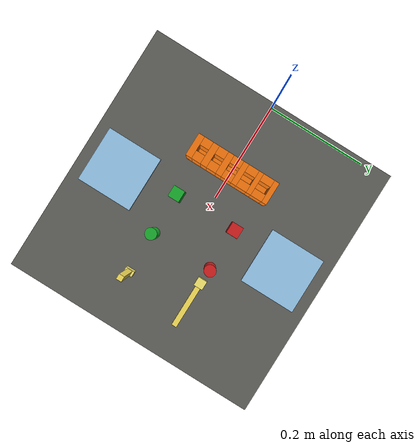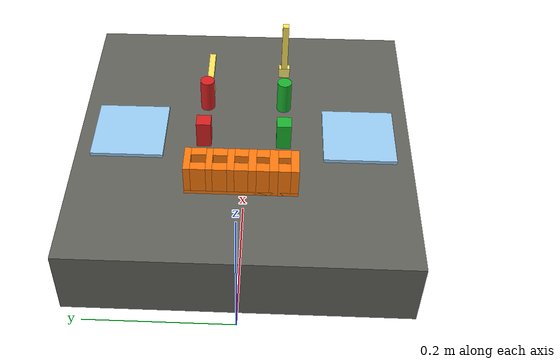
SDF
<sdf version="1.8">
 <world name="ur_hande_dual_arm_tabletop">
  <model name="Sync_TaskPlatform">
   <static>true</static>
   <pose>0.25 0 0.05 0 0 0</pose>
   <link name="platform_link">
    <collision name="collision">
     <geometry><box><size>0.462 0.462 0.1</size></box></geometry>
     <surface>
      <friction><ode><mu>1</mu><mu2>1</mu2></ode></friction>
      <contact><ode><max_vel>0.2</max_vel><min_depth>0.001</min_depth></ode></contact>
     </surface>
    </collision>
    <visual name="visual">
     <geometry><box><size>0.462 0.462 0.1</size></box></geometry>
     <material>
      <ambient>0.38 0.38 0.36 1</ambient>
      <diffuse>0.38 0.38 0.36 1</diffuse>
      <specular>0.1 0.1 0.1 1</specular>
     </material>
    </visual>
   </link>
  </model>
  <model name="Sync_RedCube">
   <static>false</static>
   <pose>0.235 0.055 0.12 0 0 0</pose>
   <link name="body_link">
    <collision name="collision">
     <geometry><box><size>0.02 0.02 0.04</size></box></geometry>
     <surface>
      <friction><ode><mu>0.9</mu><mu2>0.9</mu2></ode></friction>
      <contact><ode><max_vel>0.2</max_vel><min_depth>0.001</min_depth></ode></contact>
     </surface>
    </collision>
    <visual name="visual">
     <geometry><box><size>0.02 0.02 0.04</size></box></geometry>
     <material>
      <ambient>0.85 0.12 0.12 1</ambient>
      <diffuse>0.85 0.12 0.12 1</diffuse>
      <specular>0.1 0.1 0.1 1</specular>
     </material>
    </visual>
    <inertial>
     <mass>0.03</mass>
     <inertia><ixx>5e-06</ixx><ixy>0</ixy><ixz>0</ixz><iyy>5e-06</iyy><iyz>0</iyz><izz>2e-06</izz></inertia>
    </inertial>
   </link>
  </model>
  <model name="Sync_GreenCube">
   <static>false</static>
   <pose>0.235 -0.055 0.12 0 0 0</pose>
   <link name="body_link">
    <collision name="collision">
     <geometry><box><size>0.02 0.02 0.04</size></box></geometry>
     <surface>
      <friction><ode><mu>0.9</mu><mu2>0.9</mu2></ode></friction>
      <contact><ode><max_vel>0.2</max_vel><min_depth>0.001</min_depth></ode></contact>
     </surface>
    </collision>
    <visual name="visual">
     <geometry><box><size>0.02 0.02 0.04</size></box></geometry>
     <material>
      <ambient>0.1 0.7 0.18 1</ambient>
      <diffuse>0.1 0.7 0.18 1</diffuse>
      <specular>0.1 0.1 0.1 1</specular>
     </material>
    </visual>
    <inertial>
     <mass>0.03</mass>
     <inertia><ixx>5e-06</ixx><ixy>0</ixy><ixz>0</ixz><iyy>5e-06</iyy><iyz>0</iyz><izz>2e-06</izz></inertia>
    </inertial>
   </link>
  </model>
  <model name="Sync_RedCylinder">
   <static>false</static>
   <pose>0.31 0.055 0.124 0 0 0</pose>
   <link name="body_link">
    <collision name="collision">
     <geometry><cylinder><radius>0.01</radius><length>0.048</length></cylinder></geometry>
     <surface>
      <friction><ode><mu>0.9</mu><mu2>0.9</mu2></ode></friction>
      <contact><ode><max_vel>0.2</max_vel><min_depth>0.001</min_depth></ode></contact>
     </surface>
    </collision>
    <visual name="visual">
     <geometry><cylinder><radius>0.01</radius><length>0.048</length></cylinder></geometry>
     <material>
      <ambient>0.85 0.12 0.12 1</ambient>
      <diffuse>0.85 0.12 0.12 1</diffuse>
      <specular>0.1 0.1 0.1 1</specular>
     </material>
    </visual>
    <inertial>
     <mass>0.03</mass>
     <inertia>
      <ixx>6.51e-06</ixx>
      <ixy>0</ixy>
      <ixz>0</ixz>
      <iyy>6.51e-06</iyy>
      <iyz>0</iyz>
      <izz>1.5e-06</izz>
     </inertia>
    </inertial>
   </link>
  </model>
  <model name="Sync_GreenCylinder">
   <static>false</static>
   <pose>0.31 -0.055 0.124 0 0 0</pose>
   <link name="body_link">
    <collision name="collision">
     <geometry><cylinder><radius>0.01</radius><length>0.048</length></cylinder></geometry>
     <surface>
      <friction><ode><mu>0.9</mu><mu2>0.9</mu2></ode></friction>
      <contact><ode><max_vel>0.2</max_vel><min_depth>0.001</min_depth></ode></contact>
     </surface>
    </collision>
    <visual name="visual">
     <geometry><cylinder><radius>0.01</radius><length>0.048</length></cylinder></geometry>
     <material>
      <ambient>0.1 0.7 0.18 1</ambient>
      <diffuse>0.1 0.7 0.18 1</diffuse>
      <specular>0.1 0.1 0.1 1</specular>
     </material>
    </visual>
    <inertial>
     <mass>0.03</mass>
     <inertia>
      <ixx>6.51e-06</ixx>
      <ixy>0</ixy>
      <ixz>0</ixz>
      <iyy>6.51e-06</iyy>
      <iyz>0</iyz>
      <izz>1.5e-06</izz>
     </inertia>
    </inertial>
   </link>
  </model>
  <model name="Sync_Plate_A">
   <static>true</static>
   <pose>0.25 0.16 0.1025 0 0 0</pose>
   <link name="plate_link">
    <collision name="collision">
     <geometry><box><size>0.1 0.1 0.005</size></box></geometry>
     <surface>
      <friction><ode><mu>1</mu><mu2>1</mu2></ode></friction>
      <contact><ode><max_vel>0.2</max_vel><min_depth>0.001</min_depth></ode></contact>
     </surface>
    </collision>
    <visual name="visual">
     <geometry><box><size>0.1 0.1 0.005</size></box></geometry>
     <material>
      <ambient>0.6 0.8 0.95 1</ambient>
      <diffuse>0.6 0.8 0.95 1</diffuse>
      <specular>0.1 0.1 0.1 1</specular>
     </material>
    </visual>
   </link>
  </model>
  <model name="Sync_Plate_B">
   <static>true</static>
   <pose>0.25 -0.16 0.1025 0 0 0</pose>
   <link name="plate_link">
    <collision name="collision">
     <geometry><box><size>0.1 0.1 0.005</size></box></geometry>
     <surface>
      <friction><ode><mu>1</mu><mu2>1</mu2></ode></friction>
      <contact><ode><max_vel>0.2</max_vel><min_depth>0.001</min_depth></ode></contact>
     </surface>
    </collision>
    <visual name="visual">
     <geometry><box><size>0.1 0.1 0.005</size></box></geometry>
     <material>
      <ambient>0.6 0.8 0.95 1</ambient>
      <diffuse>0.6 0.8 0.95 1</diffuse>
      <specular>0.1 0.1 0.1 1</specular>
     </material>
    </visual>
   </link>
  </model>
  <model name="Sync_CableReceiverBox_Fixed">
   <static>false</static>
   <pose>0.155 0 0.1225 0 -1.5708 0</pose>
   <link name="body_link">
    <inertial>
     <mass>0.045</mass>
     <inertia>
      <ixx>9.0375e-05</ixx>
      <ixy>0</ixy>
      <ixz>0</ixz>
      <iyy>1.35938e-05</iyy>
      <iyz>0</iyz>
      <izz>9.19687e-05</izz>
     </inertia>
    </inertial>
    <collision name="port_frame_gap_0_collision">
     <pose>0 -0.0696 0 0 0 0</pose>
     <geometry><box><size>0.045 0.0108 0.04</size></box></geometry>
     <surface>
      <friction><ode><mu>0.9</mu><mu2>0.9</mu2></ode></friction>
      <contact><ode><max_vel>0.2</max_vel><min_depth>0.001</min_depth></ode></contact>
     </surface>
    </collision>
    <collision name="port_frame_gap_1_collision">
     <pose>0 -0.04215 0 0 0 0</pose>
     <geometry><box><size>0.045 0.0113 0.04</size></box></geometry>
     <surface>
      <friction><ode><mu>0.9</mu><mu2>0.9</mu2></ode></friction>
      <contact><ode><max_vel>0.2</max_vel><min_depth>0.001</min_depth></ode></contact>
     </surface>
    </collision>
    <collision name="port_frame_gap_2_collision">
     <pose>0 -0.01425 0 0 0 0</pose>
     <geometry><box><size>0.045 0.0105 0.04</size></box></geometry>
     <surface>
      <friction><ode><mu>0.9</mu><mu2>0.9</mu2></ode></friction>
      <contact><ode><max_vel>0.2</max_vel><min_depth>0.001</min_depth></ode></contact>
     </surface>
    </collision>
    <collision name="port_frame_gap_3_collision">
     <pose>0 0.01375 0 0 0 0</pose>
     <geometry><box><size>0.045 0.0095 0.04</size></box></geometry>
     <surface>
      <friction><ode><mu>0.9</mu><mu2>0.9</mu2></ode></friction>
      <contact><ode><max_vel>0.2</max_vel><min_depth>0.001</min_depth></ode></contact>
     </surface>
    </collision>
    <collision name="port_frame_gap_4_collision">
     <pose>0 0.04175 0 0 0 0</pose>
     <geometry><box><size>0.045 0.0085 0.04</size></box></geometry>
     <surface>
      <friction><ode><mu>0.9</mu><mu2>0.9</mu2></ode></friction>
      <contact><ode><max_vel>0.2</max_vel><min_depth>0.001</min_depth></ode></contact>
     </surface>
    </collision>
    <collision name="port_frame_gap_end_collision">
     <pose>0 0.0705 0 0 0 0</pose>
     <geometry><box><size>0.045 0.009 0.04</size></box></geometry>
     <surface>
      <friction><ode><mu>0.9</mu><mu2>0.9</mu2></ode></friction>
      <contact><ode><max_vel>0.2</max_vel><min_depth>0.001</min_depth></ode></contact>
     </surface>
    </collision>
    <collision name="port_frame_loose_2p0mm_top_collision">
     <pose>0 0.056 0.0135 0 0 0</pose>
     <geometry><box><size>0.045 0.02 0.013</size></box></geometry>
     <surface>
      <friction><ode><mu>0.9</mu><mu2>0.9</mu2></ode></friction>
      <contact><ode><max_vel>0.2</max_vel><min_depth>0.001</min_depth></ode></contact>
     </surface>
    </collision>
    <collision name="port_frame_loose_2p0mm_bottom_collision">
     <pose>0 0.056 -0.0135 0 0 0</pose>
     <geometry><box><size>0.045 0.02 0.013</size></box></geometry>
     <surface>
      <friction><ode><mu>0.9</mu><mu2>0.9</mu2></ode></friction>
      <contact><ode><max_vel>0.2</max_vel><min_depth>0.001</min_depth></ode></contact>
     </surface>
    </collision>
    <collision name="port_frame_loose_1p5mm_top_collision">
     <pose>0 0.028 0.01325 0 0 0</pose>
     <geometry><box><size>0.045 0.019 0.0135</size></box></geometry>
     <surface>
      <friction><ode><mu>0.9</mu><mu2>0.9</mu2></ode></friction>
      <contact><ode><max_vel>0.2</max_vel><min_depth>0.001</min_depth></ode></contact>
     </surface>
    </collision>
    <collision name="port_frame_loose_1p5mm_bottom_collision">
     <pose>0 0.028 -0.01325 0 0 0</pose>
     <geometry><box><size>0.045 0.019 0.0135</size></box></geometry>
     <surface>
      <friction><ode><mu>0.9</mu><mu2>0.9</mu2></ode></friction>
      <contact><ode><max_vel>0.2</max_vel><min_depth>0.001</min_depth></ode></contact>
     </surface>
    </collision>
    <collision name="port_frame_default_1p0mm_top_collision">
     <pose>0 0 0.013 0 0 0</pose>
     <geometry><box><size>0.045 0.018 0.014</size></box></geometry>
     <surface>
      <friction><ode><mu>0.9</mu><mu2>0.9</mu2></ode></friction>
      <contact><ode><max_vel>0.2</max_vel><min_depth>0.001</min_depth></ode></contact>
     </surface>
    </collision>
    <collision name="port_frame_default_1p0mm_bottom_collision">
     <pose>0 0 -0.013 0 0 0</pose>
     <geometry><box><size>0.045 0.018 0.014</size></box></geometry>
     <surface>
      <friction><ode><mu>0.9</mu><mu2>0.9</mu2></ode></friction>
      <contact><ode><max_vel>0.2</max_vel><min_depth>0.001</min_depth></ode></contact>
     </surface>
    </collision>
    <collision name="port_frame_tight_0p5mm_top_collision">
     <pose>0 -0.028 0.01275 0 0 0</pose>
     <geometry><box><size>0.045 0.017 0.0145</size></box></geometry>
     <surface>
      <friction><ode><mu>0.9</mu><mu2>0.9</mu2></ode></friction>
      <contact><ode><max_vel>0.2</max_vel><min_depth>0.001</min_depth></ode></contact>
     </surface>
    </collision>
    <collision name="port_frame_tight_0p5mm_bottom_collision">
     <pose>0 -0.028 -0.01275 0 0 0</pose>
     <geometry><box><size>0.045 0.017 0.0145</size></box></geometry>
     <surface>
      <friction><ode><mu>0.9</mu><mu2>0.9</mu2></ode></friction>
      <contact><ode><max_vel>0.2</max_vel><min_depth>0.001</min_depth></ode></contact>
     </surface>
    </collision>
    <collision name="port_frame_tight_0p2mm_top_collision">
     <pose>0 -0.056 0.0126 0 0 0</pose>
     <geometry><box><size>0.045 0.0164 0.0148</size></box></geometry>
     <surface>
      <friction><ode><mu>0.9</mu><mu2>0.9</mu2></ode></friction>
      <contact><ode><max_vel>0.2</max_vel><min_depth>0.001</min_depth></ode></contact>
     </surface>
    </collision>
    <collision name="port_frame_tight_0p2mm_bottom_collision">
     <pose>0 -0.056 -0.0126 0 0 0</pose>
     <geometry><box><size>0.045 0.0164 0.0148</size></box></geometry>
     <surface>
      <friction><ode><mu>0.9</mu><mu2>0.9</mu2></ode></friction>
      <contact><ode><max_vel>0.2</max_vel><min_depth>0.001</min_depth></ode></contact>
     </surface>
    </collision>
    <collision name="port_back_wall_collision">
     <pose>-0.0198 0 0 0 0 0</pose>
     <geometry><box><size>0.0054 0.15 0.04</size></box></geometry>
     <surface>
      <friction><ode><mu>0.9</mu><mu2>0.9</mu2></ode></friction>
      <contact><ode><max_vel>0.2</max_vel><min_depth>0.001</min_depth></ode></contact>
     </surface>
    </collision>
    <visual name="port_frame_gap_0_visual">
     <pose>0 -0.0696 0 0 0 0</pose>
     <geometry><box><size>0.045 0.0108 0.04</size></box></geometry>
     <material>
      <ambient>1 0.48 0.05 1</ambient>
      <diffuse>1 0.48 0.05 1</diffuse>
      <specular>0.1 0.1 0.1 1</specular>
     </material>
    </visual>
    <visual name="port_frame_gap_1_visual">
     <pose>0 -0.04215 0 0 0 0</pose>
     <geometry><box><size>0.045 0.0113 0.04</size></box></geometry>
     <material>
      <ambient>1 0.48 0.05 1</ambient>
      <diffuse>1 0.48 0.05 1</diffuse>
      <specular>0.1 0.1 0.1 1</specular>
     </material>
    </visual>
    <visual name="port_frame_gap_2_visual">
     <pose>0 -0.01425 0 0 0 0</pose>
     <geometry><box><size>0.045 0.0105 0.04</size></box></geometry>
     <material>
      <ambient>1 0.48 0.05 1</ambient>
      <diffuse>1 0.48 0.05 1</diffuse>
      <specular>0.1 0.1 0.1 1</specular>
     </material>
    </visual>
    <visual name="port_frame_gap_3_visual">
     <pose>0 0.01375 0 0 0 0</pose>
     <geometry><box><size>0.045 0.0095 0.04</size></box></geometry>
     <material>
      <ambient>1 0.48 0.05 1</ambient>
      <diffuse>1 0.48 0.05 1</diffuse>
      <specular>0.1 0.1 0.1 1</specular>
     </material>
    </visual>
    <visual name="port_frame_gap_4_visual">
     <pose>0 0.04175 0 0 0 0</pose>
     <geometry><box><size>0.045 0.0085 0.04</size></box></geometry>
     <material>
      <ambient>1 0.48 0.05 1</ambient>
      <diffuse>1 0.48 0.05 1</diffuse>
      <specular>0.1 0.1 0.1 1</specular>
     </material>
    </visual>
    <visual name="port_frame_gap_end_visual">
     <pose>0 0.0705 0 0 0 0</pose>
     <geometry><box><size>0.045 0.009 0.04</size></box></geometry>
     <material>
      <ambient>1 0.48 0.05 1</ambient>
      <diffuse>1 0.48 0.05 1</diffuse>
      <specular>0.1 0.1 0.1 1</specular>
     </material>
    </visual>
    <visual name="port_frame_loose_2p0mm_top_visual">
     <pose>0 0.056 0.0135 0 0 0</pose>
     <geometry><box><size>0.045 0.02 0.013</size></box></geometry>
     <material>
      <ambient>1 0.48 0.05 1</ambient>
      <diffuse>1 0.48 0.05 1</diffuse>
      <specular>0.1 0.1 0.1 1</specular>
     </material>
    </visual>
    <visual name="port_frame_loose_2p0mm_bottom_visual">
     <pose>0 0.056 -0.0135 0 0 0</pose>
     <geometry><box><size>0.045 0.02 0.013</size></box></geometry>
     <material>
      <ambient>1 0.48 0.05 1</ambient>
      <diffuse>1 0.48 0.05 1</diffuse>
      <specular>0.1 0.1 0.1 1</specular>
     </material>
    </visual>
    <visual name="port_frame_loose_1p5mm_top_visual">
     <pose>0 0.028 0.01325 0 0 0</pose>
     <geometry><box><size>0.045 0.019 0.0135</size></box></geometry>
     <material>
      <ambient>1 0.48 0.05 1</ambient>
      <diffuse>1 0.48 0.05 1</diffuse>
      <specular>0.1 0.1 0.1 1</specular>
     </material>
    </visual>
    <visual name="port_frame_loose_1p5mm_bottom_visual">
     <pose>0 0.028 -0.01325 0 0 0</pose>
     <geometry><box><size>0.045 0.019 0.0135</size></box></geometry>
     <material>
      <ambient>1 0.48 0.05 1</ambient>
      <diffuse>1 0.48 0.05 1</diffuse>
      <specular>0.1 0.1 0.1 1</specular>
     </material>
    </visual>
    <visual name="port_frame_default_1p0mm_top_visual">
     <pose>0 0 0.013 0 0 0</pose>
     <geometry><box><size>0.045 0.018 0.014</size></box></geometry>
     <material>
      <ambient>1 0.48 0.05 1</ambient>
      <diffuse>1 0.48 0.05 1</diffuse>
      <specular>0.1 0.1 0.1 1</specular>
     </material>
    </visual>
    <visual name="port_frame_default_1p0mm_bottom_visual">
     <pose>0 0 -0.013 0 0 0</pose>
     <geometry><box><size>0.045 0.018 0.014</size></box></geometry>
     <material>
      <ambient>1 0.48 0.05 1</ambient>
      <diffuse>1 0.48 0.05 1</diffuse>
      <specular>0.1 0.1 0.1 1</specular>
     </material>
    </visual>
    <visual name="port_frame_tight_0p5mm_top_visual">
     <pose>0 -0.028 0.01275 0 0 0</pose>
     <geometry><box><size>0.045 0.017 0.0145</size></box></geometry>
     <material>
      <ambient>1 0.48 0.05 1</ambient>
      <diffuse>1 0.48 0.05 1</diffuse>
      <specular>0.1 0.1 0.1 1</specular>
     </material>
    </visual>
    <visual name="port_frame_tight_0p5mm_bottom_visual">
     <pose>0 -0.028 -0.01275 0 0 0</pose>
     <geometry><box><size>0.045 0.017 0.0145</size></box></geometry>
     <material>
      <ambient>1 0.48 0.05 1</ambient>
      <diffuse>1 0.48 0.05 1</diffuse>
      <specular>0.1 0.1 0.1 1</specular>
     </material>
    </visual>
    <visual name="port_frame_tight_0p2mm_top_visual">
     <pose>0 -0.056 0.0126 0 0 0</pose>
     <geometry><box><size>0.045 0.0164 0.0148</size></box></geometry>
     <material>
      <ambient>1 0.48 0.05 1</ambient>
      <diffuse>1 0.48 0.05 1</diffuse>
      <specular>0.1 0.1 0.1 1</specular>
     </material>
    </visual>
    <visual name="port_frame_tight_0p2mm_bottom_visual">
     <pose>0 -0.056 -0.0126 0 0 0</pose>
     <geometry><box><size>0.045 0.0164 0.0148</size></box></geometry>
     <material>
      <ambient>1 0.48 0.05 1</ambient>
      <diffuse>1 0.48 0.05 1</diffuse>
      <specular>0.1 0.1 0.1 1</specular>
     </material>
    </visual>
    <visual name="port_back_wall_visual">
     <pose>-0.0198 0 0 0 0 0</pose>
     <geometry><box><size>0.0054 0.15 0.04</size></box></geometry>
     <material>
      <ambient>1 0.48 0.05 1</ambient>
      <diffuse>1 0.48 0.05 1</diffuse>
      <specular>0.1 0.1 0.1 1</specular>
     </material>
    </visual>
   </link>
  </model>
  <model name="Sync_CableRod">
   <static>false</static>
   <pose>0.385 0.055 0.1045 0 0 0</pose>
   <link name="body_link">
    <collision name="collision">
     <geometry><box><size>0.075 0.009 0.009</size></box></geometry>
     <surface>
      <friction><ode><mu>0.9</mu><mu2>0.9</mu2></ode></friction>
      <contact><ode><max_vel>0.2</max_vel><min_depth>0.001</min_depth></ode></contact>
     </surface>
    </collision>
    <visual name="visual">
     <geometry><box><size>0.075 0.009 0.009</size></box></geometry>
     <material>
      <ambient>1 0.9 0.35 1</ambient>
      <diffuse>1 0.9 0.35 1</diffuse>
      <specular>0.1 0.1 0.1 1</specular>
     </material>
    </visual>
    <inertial>
     <mass>0.018</mass>
     <inertia>
      <ixx>5.34e-07</ixx>
      <ixy>0</ixy>
      <ixz>0</ixz>
      <iyy>1.25715e-05</iyy>
      <iyz>0</iyz>
      <izz>1.28055e-05</izz>
     </inertia>
    </inertial>
    <collision name="plug_end_collision">
     <pose>-0.0455 0 0 0 0 0</pose>
     <geometry><box><size>0.016 0.016 0.01</size></box></geometry>
     <surface>
      <friction><ode><mu>0.9</mu><mu2>0.9</mu2></ode></friction>
      <contact><ode><max_vel>0.2</max_vel><min_depth>0.001</min_depth></ode></contact>
     </surface>
    </collision>
    <visual name="plug_end_visual">
     <pose>-0.0455 0 0 0 0 0</pose>
     <geometry><box><size>0.016 0.016 0.01</size></box></geometry>
     <material>
      <ambient>1 0.94 0.45 1</ambient>
      <diffuse>1 0.94 0.45 1</diffuse>
      <specular>0.1 0.1 0.1 1</specular>
     </material>
    </visual>
   </link>
  </model>
  <model name="Sync_CableRod_B">
   <static>false</static>
   <pose>0.385 -0.055 0.154 0 -1.5708 0</pose>
   <link name="body_link">
    <collision name="collision">
     <geometry><box><size>0.075 0.009 0.009</size></box></geometry>
     <surface>
      <friction><ode><mu>0.9</mu><mu2>0.9</mu2></ode></friction>
      <contact><ode><max_vel>0.2</max_vel><min_depth>0.001</min_depth></ode></contact>
     </surface>
    </collision>
    <visual name="visual">
     <geometry><box><size>0.075 0.009 0.009</size></box></geometry>
     <material>
      <ambient>1 0.9 0.35 1</ambient>
      <diffuse>1 0.9 0.35 1</diffuse>
      <specular>0.1 0.1 0.1 1</specular>
     </material>
    </visual>
    <inertial>
     <mass>0.018</mass>
     <inertia>
      <ixx>5.34e-07</ixx>
      <ixy>0</ixy>
      <ixz>0</ixz>
      <iyy>1.25715e-05</iyy>
      <iyz>0</iyz>
      <izz>1.28055e-05</izz>
     </inertia>
    </inertial>
    <collision name="plug_end_collision">
     <pose>-0.0455 0 0 0 0 0</pose>
     <geometry><box><size>0.016 0.016 0.01</size></box></geometry>
     <surface>
      <friction><ode><mu>0.9</mu><mu2>0.9</mu2></ode></friction>
      <contact><ode><max_vel>0.2</max_vel><min_depth>0.001</min_depth></ode></contact>
     </surface>
    </collision>
    <visual name="plug_end_visual">
     <pose>-0.0455 0 0 0 0 0</pose>
     <geometry><box><size>0.016 0.016 0.01</size></box></geometry>
     <material>
      <ambient>1 0.94 0.45 1</ambient>
      <diffuse>1 0.94 0.45 1</diffuse>
      <specular>0.1 0.1 0.1 1</specular>
     </material>
    </visual>
   </link>
  </model>
 </world>
</sdf>
